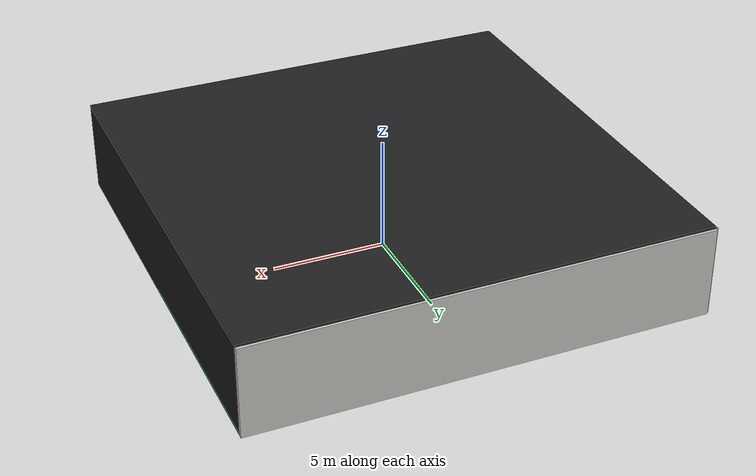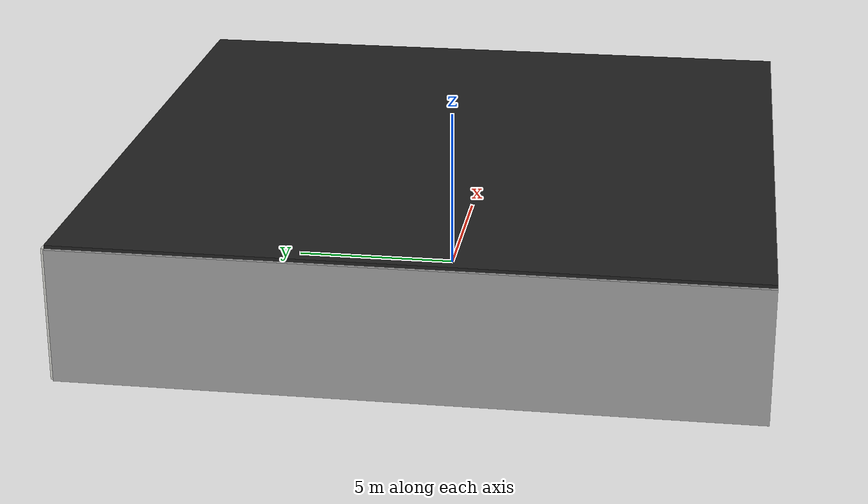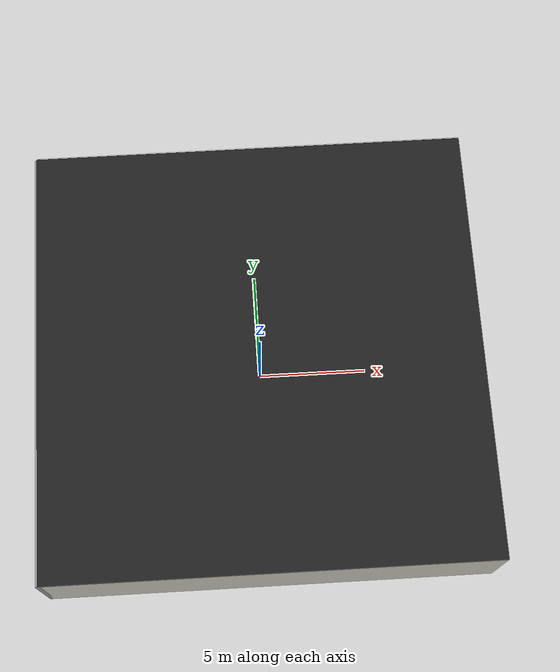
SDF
<sdf version="1.4">
 <world name="default">
  <physics type="ode">
   <max_step_size>0.001</max_step_size>
   <real_time_factor>1</real_time_factor>
   <real_time_update_rate>1000</real_time_update_rate>
   <gravity>0 0 -9.8</gravity>
  </physics>
  <scene><ambient>0.4 0.4 0.4 1</ambient><background>0.7 0.7 0.7 1</background><shadows>1</shadows></scene>
  <model name="Surrounding">
   <static>1</static>
   <link name="Ceiling">
    <collision name="Ceiling_Collision"><geometry><box><size>20 20 0.1</size></box></geometry></collision>
    <visual name="Ceiling_Visual">
     <geometry><box><size>20 20 0.1</size></box></geometry>
     <material>
      <script><uri>file://media/materials/scripts/gazebo.material</uri><name>Gazebo/FlatBlack</name></script>
     </material>
    </visual>
    <pose>0 0 4.05 0 0 0</pose>
   </link>
   <link name="Wall_South">
    <collision name="Wall_South_Collision">
     <geometry><box><size>20 0 4</size></box></geometry>
     <pose>0 0 2 0 -0 0</pose>
    </collision>
    <visual name="Wall_South_Visual">
     <pose>0 0 2 0 -0 0</pose>
     <geometry><box><size>20 0 4</size></box></geometry>
     <material>
      <script><uri>file://media/materials/scripts/gazebo.material</uri><name>Gazebo/PaintedWall</name></script>
     </material>
    </visual>
    <velocity_decay><linear>0</linear><angular>0</angular></velocity_decay>
    <pose>0 -10 0 0 -0 0</pose>
   </link>
   <link name="Wall_East">
    <collision name="Wall_21_Collision">
     <geometry><box><size>20 0 4</size></box></geometry>
     <pose>0 0 2 0 -0 0</pose>
    </collision>
    <visual name="Wall_21_Visual">
     <pose>0 0 2 0 -0 0</pose>
     <geometry><box><size>20 0 4</size></box></geometry>
     <material>
      <script><uri>file://media/materials/scripts/gazebo.material</uri><name>Gazebo/Black</name></script>
     </material>
    </visual>
    <velocity_decay><linear>0</linear><angular>0</angular></velocity_decay>
    <pose>10 0 0 0 -0 1.5708</pose>
   </link>
   <link name="Wall_North">
    <collision name="Wall_22_Collision">
     <geometry><box><size>20 0.2 4</size></box></geometry>
     <pose>0 0 2 0 -0 0</pose>
    </collision>
    <visual name="Wall_22_Visual">
     <pose>0 0 2 0 -0 0</pose>
     <geometry><box><size>20 0.2 4</size></box></geometry>
     <material>
      <script><uri>file://media/materials/scripts/gazebo.material</uri><name>Gazebo/CeilingTiled</name></script>
     </material>
    </visual>
    <velocity_decay><linear>0</linear><angular>0</angular></velocity_decay>
    <pose>0 10 0 0 -0 0</pose>
   </link>
   <link name="Wall_West">
    <collision name="Wall_23_Collision">
     <geometry><box><size>20 0.2 4</size></box></geometry>
     <pose>0 0 2 0 -0 0</pose>
    </collision>
    <visual name="Wall_23_Visual">
     <pose>0 0 2 0 -0 0</pose>
     <geometry><box><size>20 0.2 4</size></box></geometry>
     <material>
      <script><uri>file://media/materials/scripts/gazebo.material</uri><name>Gazebo/Grey</name></script>
     </material>
    </visual>
    <velocity_decay><linear>0</linear><angular>0</angular></velocity_decay>
    <pose>-10 0 0 0 0 -1.5708</pose>
   </link>
   <link name="Ground_link">
    <collision name="collision">
     <pose>0 0 .05 0 -0 0</pose>
     <geometry><box><size>20 20 0.1</size></box></geometry>
    </collision>
    <visual name="visual">
     <pose>0 0 .05 0 -0 0</pose>
     <geometry><box><size>20 20 0.1</size></box></geometry>
     <material>
      <script><uri>file://media/materials/scripts/gazebo.material</uri><name>Gazebo/Turquoise</name></script>
     </material>
    </visual>
   </link>
   <static>1</static>
  </model>
  <spherical_coordinates>
   <surface_model>EARTH_WGS84</surface_model>
   <latitude_deg>0</latitude_deg>
   <longitude_deg>0</longitude_deg>
   <elevation>0</elevation>
   <heading_deg>0</heading_deg>
  </spherical_coordinates>
  <light name="lightball_0" type="diffuse">
   <diffuse>0.8 0.8 0.8 1</diffuse>
   <specular>0.2 0.2 0.2 1</specular>
   <attenuation>
    <range>100</range>
    <constant>0.7</constant>
    <linear>0.01</linear>
    <quadratic>0.001</quadratic>
   </attenuation>
   <direction>-0.5 0.1 -0.9</direction>
   <pose>-3.77466444385 5.06100610069 1.74736464893 0 0 0</pose>
  </light>
  <light name="lightball_1" type="diffuse">
   <diffuse>0.8 0.8 0.8 1</diffuse>
   <specular>0.2 0.2 0.2 1</specular>
   <attenuation>
    <range>100</range>
    <constant>0.7</constant>
    <linear>0.01</linear>
    <quadratic>0.001</quadratic>
   </attenuation>
   <direction>-0.5 0.1 -0.9</direction>
   <pose>-1.35066741944 -6.41438846352 1.49620374418 0 0 0</pose>
  </light>
  <light name="lightball_2" type="diffuse">
   <diffuse>0.8 0.8 0.8 1</diffuse>
   <specular>0.2 0.2 0.2 1</specular>
   <attenuation>
    <range>100</range>
    <constant>0.7</constant>
    <linear>0.01</linear>
    <quadratic>0.001</quadratic>
   </attenuation>
   <direction>-0.5 0.1 -0.9</direction>
   <pose>-0.0896881979976 3.38747334592 1.00166769813 0 0 0</pose>
  </light>
  <include>
   <uri>model://textured_shapes</uri>
   <pose>-6.79823855494 -5.01191171794 0 0 0 2.17492804509</pose>
  </include>
  <include><uri>model://cabinet</uri><pose>-8.23689243266 1.23050872015 0 0 0 2.59774604541</pose></include>
  <include>
   <uri>model://robocup_3Dsim_goal</uri>
   <pose>-0.794096096198 7.49823389859 0 0 0 1.67546234173</pose>
  </include>
  <include><uri>model://cabinet</uri><pose>3.77538549502 -8.17022192542 0 0 0 1.26084826074</pose></include>
  <include><uri>model://cabinet</uri><pose>7.4719106998 1.29573930413 0 0 0 0.822490705182</pose></include>
  <include><uri>model://cabinet</uri><pose>7.50620056446 7.64010283063 0 0 0 0.606267163404</pose></include>
 </world>
</sdf>

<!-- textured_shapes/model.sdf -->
<sdf version="1.6">
  <model name="textured_shapes">
    <pose>0 0 0.5 0 0 0</pose>
    <link name="box">
      <pose>0 -1.5 0 0 0 0</pose>
      <collision name="collision">
        <geometry>
          <box>
            <size>1 1 1</size>
          </box>
        </geometry>
      </collision>
      <visual name="visual">
        <geometry>
          <box>
            <size>1 1 1</size>
          </box>
        </geometry>
        <material>
          <script>
            <uri>model://../model_source/models/textured_shapes/materials/scripts</uri>
            <uri>model://../model_source/models/textured_shapes/materials/textures</uri>
            <name>TexturedShape/Squares</name>
          </script>
        </material>
      </visual>
    </link>
    <link name="sphere">
      <collision name="collision">
        <geometry>
          <sphere>
            <radius>0.5</radius>
          </sphere>
        </geometry>
      </collision>
      <visual name="visual">
        <geometry>
          <sphere>
            <radius>0.5</radius>
          </sphere>
        </geometry>
        <material>
          <script>
            <uri>model://../model_source/models/textured_shapes/materials/scripts</uri>
            <uri>model://../model_source/models/textured_shapes/materials/textures</uri>
            <name>TexturedShape/Squares</name>
          </script>
        </material>
      </visual>
    </link>
    <link name="cylinder">
      <pose>0 1.5 0 0 0 0</pose>
      <collision name="collision">
        <geometry>
          <cylinder>
            <radius>0.5</radius>
            <length>1</length>
          </cylinder>
        </geometry>
      </collision>
      <visual name="visual">
        <geometry>
          <cylinder>
            <radius>0.5</radius>
            <length>1</length>
          </cylinder>
        </geometry>
        <material>
          <script>
            <uri>model://../model_source/models/textured_shapes/materials/scripts</uri>
            <uri>model://../model_source/models/textured_shapes/materials/textures</uri>
            <name>TexturedShape/Squares</name>
          </script>
        </material>
      </visual>
    </link>
  </model>
</sdf>

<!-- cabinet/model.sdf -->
<sdf version="1.5">
  <model name="cabinet">
    <static>true</static>
    <link name="cabinet_bottom_plate">
      <inertial>
        <pose>0 0 -1 0 0 0</pose>
        <inertia>
          <ixx>2.050000</ixx>
          <ixy>0</ixy>
          <ixz>0</ixz>
          <iyy>2.050000</iyy>
          <iyz>0</iyz>
          <izz>2.050000</izz>
        </inertia>
        <mass>25.000000</mass>
      </inertial>
      <collision name="cabinet_bottom_plate_geom">
        <pose>0 0 0.010000 0 0 0</pose>
        <geometry>
          <box>
            <size>0.450000 0.450000 0.020000</size>
          </box>
        </geometry>
      </collision>
      <visual name="cabinet_bottom_plate_geom_visual">
        <pose>0 0 0.010000 0 0 0</pose>
        <geometry>
          <box>
            <size>0.450000 0.450000 0.020000</size>
          </box>
        </geometry>
        <material>
          <script>
            <uri>model://media/materials/scripts/gazebo.material</uri>
            <name>Gazebo/Wood</name>
          </script>
        </material>
      </visual>
      <collision name="cabinet_bottom_plate_geom_cabinet_back_plate">
        <pose>0.235000 0 0.510000 0 0 0</pose>
        <geometry>
          <box>
            <size>0.020000 0.450000 1.020000</size>
          </box>
        </geometry>
      </collision>
      <visual name="cabinet_bottom_plate_geom_cabinet_back_plate_visual">
        <pose>0.235000 0 0.510000 0 0 0</pose>
        <geometry>
          <box>
            <size>0.020000 0.450000 1.020000</size>
          </box>
        </geometry>
        <material>
          <script>
            <uri>model://media/materials/scripts/gazebo.material</uri>
            <name>Gazebo/Wood</name>
          </script>
        </material>
      </visual>
      <collision name="cabinet_bottom_plate_geom_cabinet_left_plate">
        <pose>0 0.235000 0.510000 0 0 0</pose>
        <geometry>
          <box>
            <size>0.450000 0.020000 1.020000</size>
          </box>
        </geometry>
      </collision>
      <visual name="cabinet_bottom_plate_geom_cabinet_left_plate_visual">
        <pose>0 0.235000 0.510000 0 0 0</pose>
        <geometry>
          <box>
            <size>0.450000 0.020000 1.020000</size>
          </box>
        </geometry>
        <material>
          <script>
            <uri>model://media/materials/scripts/gazebo.material</uri>
            <name>Gazebo/Wood</name>
          </script>
        </material>
      </visual>
      <collision name="cabinet_bottom_plate_geom_cabinet_middle_plate">
        <pose>0 0 0.510000 0 0 0</pose>
        <geometry>
          <box>
            <size>0.450000 0.450000 0.020000</size>
          </box>
        </geometry>
      </collision>
      <visual name="cabinet_bottom_plate_geom_cabinet_middle_plate_visual">
        <pose>0 0 0.510000 0 0 0</pose>
        <geometry>
          <box>
            <size>0.450000 0.450000 0.020000</size>
          </box>
        </geometry>
        <material>
          <script>
            <uri>model://media/materials/scripts/gazebo.material</uri>
            <name>Gazebo/Wood</name>
          </script>
        </material>
      </visual>
      <collision name="cabinet_bottom_plate_geom_cabinet_right_plate">
        <pose>0 -0.235000 0.510000 0 0 0</pose>
        <geometry>
          <box>
            <size>0.450000 0.020000 1.020000</size>
          </box>
        </geometry>
      </collision>
      <visual name="cabinet_bottom_plate_geom_cabinet_right_plate_visual">
        <pose>0 -0.235000 0.510000 0 0 0</pose>
        <geometry>
          <box>
            <size>0.450000 0.020000 1.020000</size>
          </box>
        </geometry>
        <material>
          <script>
            <uri>model://media/materials/scripts/gazebo.material</uri>
            <name>Gazebo/Wood</name>
          </script>
        </material>
      </visual>
      <collision name="cabinet_bottom_plate_geom_cabinet_top_plate">
        <pose>0 0 1.010000 0 0 0</pose>
        <geometry>
          <box>
            <size>0.450000 0.450000 0.020000</size>
          </box>
        </geometry>
      </collision>
      <visual name="cabinet_bottom_plate_geom_cabinet_top_plate_visual">
        <pose>0 0 1.010000 0 0 0</pose>
        <geometry>
          <box>
            <size>0.450000 0.450000 0.020000</size>
          </box>
        </geometry>
        <material>
          <script>
            <uri>model://media/materials/scripts/gazebo.material</uri>
            <name>Gazebo/Wood</name>
          </script>
        </material>
      </visual>
    </link>
  </model>
</sdf>

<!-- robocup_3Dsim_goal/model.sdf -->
<sdf version="1.5">
  <model name="robocup_3d_goal">
    <static>true</static>
    <link name="left_post">
      <pose>0 1.05 0.45 0 0 0</pose>
      <collision name="collision">
        <geometry>
          <cylinder>
            <radius>0.05</radius>
            <length>0.9</length>
          </cylinder>
        </geometry>
      </collision>
      <visual name="visual">
        <geometry>
          <cylinder>
            <radius>0.05</radius>
            <length>0.9</length>
          </cylinder>
        </geometry>
        <material>
          <script>
            <uri>file://media/materials/scripts/gazebo.material</uri>
            <name>Gazebo/ZincYellow</name>
          </script>
        </material>
      </visual>
    </link>
    <link name="left_support_horiz_lower">
      <pose>0.30 1.05 0.01 0 0 0</pose>
      <collision name="collision">
        <geometry>
          <box>
            <size>0.50 0.02 0.02</size>
          </box>
        </geometry>
      </collision>
      <visual name="visual">
        <geometry>
          <box>
            <size>0.50 0.02 0.02</size>
          </box>
        </geometry>
        <material>
          <script>
            <uri>file://media/materials/scripts/gazebo.material</uri>
            <name>Gazebo/White</name>
          </script>
        </material>
      </visual>
    </link>
    <link name="left_support_horiz_upper">
      <pose>0.30 1.05 0.79 0 0 0</pose>
      <collision name="collision">
        <geometry>
          <box>
            <size>0.50 0.02 0.02</size>
          </box>
        </geometry>
      </collision>
      <visual name="visual">
        <geometry>
          <box>
            <size>0.50 0.02 0.02</size>
          </box>
        </geometry>
        <material>
          <script>
            <uri>file://media/materials/scripts/gazebo.material</uri>
            <name>Gazebo/White</name>
          </script>
        </material>
      </visual>
    </link>
    <link name="left_support_vertical">
      <pose>0.56 1.05 0.4 0 1.5708 0</pose>
      <collision name="collision">
        <geometry>
          <box>
            <size>0.80 0.02 0.02</size>
          </box>
        </geometry>
      </collision>
      <visual name="visual">
        <geometry>
          <box>
            <size>0.80 0.02 0.02</size>
          </box>
        </geometry>
        <material>
          <script>
            <uri>file://media/materials/scripts/gazebo.material</uri>
            <name>Gazebo/White</name>
          </script>
        </material>
      </visual>
    </link>
    <link name="right_support_horiz_lower">
      <pose>0.30 -1.05 0.01 0 0 0</pose>
      <collision name="collision">
        <geometry>
          <box>
            <size>0.50 0.02 0.02</size>
          </box>
        </geometry>
      </collision>
      <visual name="visual">
        <geometry>
          <box>
            <size>0.50 0.02 0.02</size>
          </box>
        </geometry>
        <material>
          <script>
            <uri>file://media/materials/scripts/gazebo.material</uri>
            <name>Gazebo/White</name>
          </script>
        </material>
      </visual>
    </link>
    <link name="right_support_horiz_upper">
      <pose>0.30 -1.05 0.79 0 0 0</pose>
      <collision name="collision">
        <geometry>
          <box>
            <size>0.50 0.02 0.02</size>
          </box>
        </geometry>
      </collision>
      <visual name="visual">
        <geometry>
          <box>
            <size>0.50 0.02 0.02</size>
          </box>
        </geometry>
        <material>
          <script>
            <uri>file://media/materials/scripts/gazebo.material</uri>
            <name>Gazebo/White</name>
          </script>
        </material>
      </visual>
    </link>
    <link name="right_support_vertical">
      <pose>0.56 -1.05 0.4 0 1.5708 0</pose>
      <collision name="collision">
        <geometry>
          <box>
            <size>0.80 0.02 0.02</size>
          </box>
        </geometry>
      </collision>
      <visual name="visual">
        <geometry>
          <box>
            <size>0.80 0.02 0.02</size>
          </box>
        </geometry>
        <material>
          <script>
            <uri>file://media/materials/scripts/gazebo.material</uri>
            <name>Gazebo/White</name>
          </script>
        </material>
      </visual>
    </link>
    <link name="center_support_horiz_lower">
      <pose>0.56 0 0.01 0 1.5708 0</pose>
      <collision name="collision">
        <geometry>
          <box>
            <size>0.02 2.08 0.02</size>
          </box>
        </geometry>
      </collision>
      <visual name="visual">
        <geometry>
          <box>
            <size>0.02 2.08 0.02</size>
          </box>
        </geometry>
        <material>
          <script>
            <uri>file://media/materials/scripts/gazebo.material</uri>
            <name>Gazebo/White</name>
          </script>
        </material>
      </visual>
    </link>
    <link name="center_support_horiz_upper">
      <pose>0.56 0 0.79 0 1.5708 0</pose>
      <collision name="collision">
        <geometry>
          <box>
            <size>0.02 2.08 0.02</size>
          </box>
        </geometry>
      </collision>
      <visual name="visual">
        <geometry>
          <box>
            <size>0.02 2.08 0.02</size>
          </box>
        </geometry>
        <material>
          <script>
            <uri>file://media/materials/scripts/gazebo.material</uri>
            <name>Gazebo/White</name>
          </script>
        </material>
      </visual>
    </link>
    <link name="right_post">
      <pose>0 -1.05 0.45 0 0 0</pose>
      <collision name="collision">
        <geometry>
          <cylinder>
            <radius>0.05</radius>
            <length>0.9</length>
          </cylinder>
        </geometry>
      </collision>
      <visual name="visual">
        <geometry>
          <cylinder>
            <radius>0.05</radius>
            <length>0.9</length>
          </cylinder>
        </geometry>
        <material>
          <script>
            <uri>file://media/materials/scripts/gazebo.material</uri>
            <name>Gazebo/ZincYellow</name>
          </script>
        </material>
      </visual>
    </link>
    <link name="crossbar">
      <pose>0 0 0.85 1.57 1.57 0</pose>
      <collision name="collision">
        <geometry>
          <cylinder>
            <radius>0.05</radius>
            <length>2.0</length>
          </cylinder>
        </geometry>
      </collision>
      <visual name="visual">
        <geometry>
          <cylinder>
            <radius>0.05</radius>
            <length>2.0</length>
          </cylinder>
        </geometry>
        <material>
          <script>
            <uri>file://media/materials/scripts/gazebo.material</uri>
            <name>Gazebo/ZincYellow</name>
          </script>
        </material>
      </visual>
    </link>
    <link name="center_net">
      <pose>0.56 0 0.40 0 0 0</pose>
      <collision name="collision">
        <geometry>
          <box>
            <size>0.01 2.1 0.80</size>
          </box>
        </geometry>
      </collision>
      <visual name="visual">
        <geometry>
          <box>
            <size>0.01 2.1 0.80</size>
          </box>
        </geometry>
        <material>
          <script>
            <uri>model://../model_source/models/robocup09_spl_field/materials/scripts/</uri>
            <uri>model://../model_source/models/robocup09_spl_field/materials/textures/</uri>
            <name>RoboCup/Net</name>
          </script>
        </material>
      </visual>
    </link>
    <link name="left_net">
      <pose>0.30 1.05 0.40 0 0 0</pose>
      <collision name="collision">
        <geometry>
          <box>
            <size>0.50 0.01 0.76</size>
          </box>
        </geometry>
      </collision>
      <visual name="visual">
        <geometry>
          <box>
            <size>0.50 0.01 0.76</size>
          </box>
        </geometry>
        <material>
          <script>
            <uri>model://../model_source/models/robocup09_spl_field/materials/scripts/</uri>
            <uri>model://../model_source/models/robocup09_spl_field/materials/textures/</uri>
            <name>RoboCup/Net</name>
          </script>
        </material>
      </visual>
    </link>
    <link name="right_net">
      <pose>0.30 -1.05 0.40 0 0 0</pose>
      <collision name="collision">
        <geometry>
          <box>
            <size>0.50 0.01 0.76</size>
          </box>
        </geometry>
      </collision>
      <visual name="visual">
        <geometry>
          <box>
            <size>0.50 0.01 0.76</size>
          </box>
        </geometry>
        <material>
          <script>
            <uri>model://../model_source/models/robocup09_spl_field/materials/scripts/</uri>
            <uri>model://../model_source/models/robocup09_spl_field/materials/textures/</uri>
            <name>RoboCup/Net</name>
          </script>
        </material>
      </visual>
    </link>
  </model>
</sdf>
